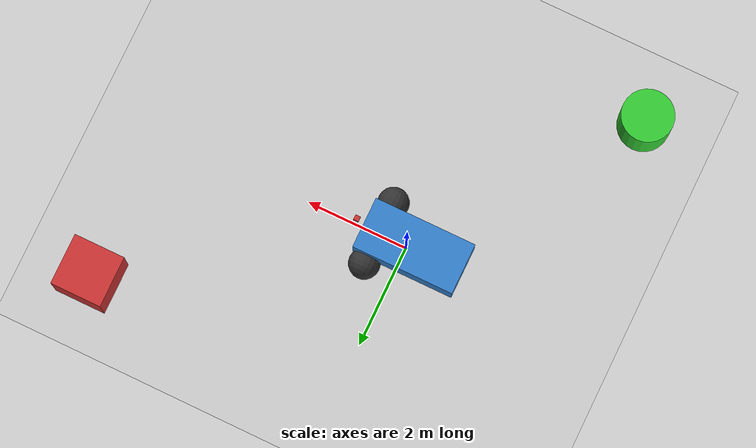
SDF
<?xml version="1.0" ?>
<sdf version="1.8">
  <world name="smart_vehicle_world">

    <!-- 물리 엔진 설정 -->
    <physics name="1ms" type="ignored">
      <max_step_size>0.001</max_step_size>
      <real_time_factor>1.0</real_time_factor>
    </physics>

    <!-- 플러그인들 -->
    <plugin filename="gz-sim-physics-system" name="gz::sim::systems::Physics"></plugin>
    <plugin filename="gz-sim-user-commands-system" name="gz::sim::systems::UserCommands"></plugin>
    <plugin filename="gz-sim-scene-broadcaster-system" name="gz::sim::systems::SceneBroadcaster"></plugin>
    <plugin filename="gz-sim-sensors-system" name="gz::sim::systems::Sensors">
      <render_engine>ogre2</render_engine>
    </plugin>

    <!-- 조명 -->
    <light type="directional" name="sun">
      <cast_shadows>true</cast_shadows>
      <pose>0 0 10 0 0 0</pose>
      <diffuse>1 1 1 1</diffuse>
      <specular>0.5 0.5 0.5 1</specular>
      <attenuation>
        <range>1000</range>
        <constant>0.9</constant>
        <linear>0.01</linear>
        <quadratic>0.001</quadratic>
      </attenuation>
      <direction>-0.5 0.1 -0.9</direction>
    </light>

    <!-- 바닥 -->
    <model name="ground_plane">
      <static>true</static>
      <link name="link">
        <collision name="collision">
          <geometry>
            <plane>
              <normal>0 0 1</normal>
              <size>100 100</size>
            </plane>
          </geometry>
        </collision>
        <visual name="visual">
          <geometry>
            <plane>
              <normal>0 0 1</normal>
              <size>100 100</size>
            </plane>
          </geometry>
          <material>
            <ambient>0.8 0.8 0.8 1</ambient>
            <diffuse>0.8 0.8 0.8 1</diffuse>
            <specular>0.8 0.8 0.8 1</specular>
          </material>
        </visual>
      </link>
    </model>

    <!-- 스마트 차량 모델 (기존 예제 기반) -->
    <model name="smart_vehicle">
      <pose>0 0 0.325 0 0 0</pose>

      <!-- 차체 -->
      <link name="chassis">
        <pose>-0.151427 0 0.175 0 0 0</pose>
        <inertial>
          <mass>1.14395</mass>
          <inertia>
            <ixx>0.126164</ixx>
            <ixy>0</ixy>
            <ixz>0</ixz>
            <iyy>0.416519</iyy>
            <iyz>0</iyz>
            <izz>0.481014</izz>
          </inertia>
        </inertial>
        <visual name="visual">
          <geometry>
            <box>
              <size>2.01142 1 0.568726</size>
            </box>
          </geometry>
          <material>
            <ambient>0.2 0.5 0.8 1</ambient>
            <diffuse>0.2 0.5 0.8 1</diffuse>
            <specular>0.0 0.0 1.0 1</specular>
          </material>
        </visual>
        <collision name="collision">
          <geometry>
            <box>
              <size>2.01142 1 0.568726</size>
            </box>
          </geometry>
        </collision>
      </link>

      <!-- 왼쪽 바퀴 (구동바퀴) -->
      <link name="left_wheel">
        <pose>0.554283 0.625029 -0.025 -1.5707 0 0</pose>
        <inertial>
          <mass>2</mass>
          <inertia>
            <ixx>0.145833</ixx>
            <ixy>0</ixy>
            <ixz>0</ixz>
            <iyy>0.145833</iyy>
            <iyz>0</iyz>
            <izz>0.125</izz>
          </inertia>
        </inertial>
        <visual name="visual">
          <geometry>
            <sphere>
              <radius>0.3</radius>
            </sphere>
          </geometry>
          <material>
            <ambient>0.2 0.2 0.2 1</ambient>
            <diffuse>0.2 0.2 0.2 1</diffuse>
            <specular>0.2 0.2 0.2 1</specular>
          </material>
        </visual>
        <collision name="collision">
          <geometry>
            <sphere>
              <radius>0.3</radius>
            </sphere>
          </geometry>
          <surface>
            <friction>
              <ode>
                <mu>1</mu>
                <mu2>1</mu2>
                <slip1>0.035</slip1>
                <slip2>0</slip2>
                <fdir1>0 0 1</fdir1>
              </ode>
              <bullet>
                <friction>1</friction>
                <friction2>1</friction2>
                <rolling_friction>0.1</rolling_friction>
              </bullet>
            </friction>
          </surface>
        </collision>
      </link>

      <!-- 오른쪽 바퀴 (구동바퀴) -->
      <link name="right_wheel">
        <pose>0.554282 -0.625029 -0.025 -1.5707 0 0</pose>
        <inertial>
          <mass>2</mass>
          <inertia>
            <ixx>0.145833</ixx>
            <ixy>0</ixy>
            <ixz>0</ixz>
            <iyy>0.145833</iyy>
            <iyz>0</iyz>
            <izz>0.125</izz>
          </inertia>
        </inertial>
        <visual name="visual">
          <geometry>
            <sphere>
              <radius>0.3</radius>
            </sphere>
          </geometry>
          <material>
            <ambient>0.2 0.2 0.2 1</ambient>
            <diffuse>0.2 0.2 0.2 1</diffuse>
            <specular>0.2 0.2 0.2 1</specular>
          </material>
        </visual>
        <collision name="collision">
          <geometry>
            <sphere>
              <radius>0.3</radius>
            </sphere>
          </geometry>
          <surface>
            <friction>
              <ode>
                <mu>1</mu>
                <mu2>1</mu2>
                <slip1>0.035</slip1>
                <slip2>0</slip2>
                <fdir1>0 0 1</fdir1>
              </ode>
              <bullet>
                <friction>1</friction>
                <friction2>1</friction2>
                <rolling_friction>0.1</rolling_friction>
              </bullet>
            </friction>
          </surface>
        </collision>
      </link>

      <!-- 캐스터 바퀴 (자유롭게 움직이는 지지바퀴) -->
      <link name="caster">
        <pose>-0.957138 0 -0.125 0 0 0</pose>
        <inertial>
          <mass>1</mass>
          <inertia>
            <ixx>0.1</ixx>
            <ixy>0</ixy>
            <ixz>0</ixz>
            <iyy>0.1</iyy>
            <iyz>0</iyz>
            <izz>0.1</izz>
          </inertia>
        </inertial>
        <visual name="visual">
          <geometry>
            <sphere>
              <radius>0.2</radius>
            </sphere>
          </geometry>
          <material>
            <ambient>0.5 0.5 0.5 1</ambient>
            <diffuse>0.5 0.5 0.5 1</diffuse>
            <specular>0.2 0.2 0.2 1</specular>
          </material>
        </visual>
        <collision name="collision">
          <geometry>
            <sphere>
              <radius>0.2</radius>
            </sphere>
          </geometry>
        </collision>
      </link>

      <!-- 조인트들 -->
      <joint name="left_wheel_joint" type="revolute">
        <parent>chassis</parent>
        <child>left_wheel</child>
        <axis>
          <xyz>0 0 1</xyz>
          <limit>
            <lower>-1.79769e+308</lower>
            <upper>1.79769e+308</upper>
          </limit>
        </axis>
      </joint>

      <joint name="right_wheel_joint" type="revolute">
        <parent>chassis</parent>
        <child>right_wheel</child>
        <axis>
          <xyz>0 0 1</xyz>
          <limit>
            <lower>-1.79769e+308</lower>
            <upper>1.79769e+308</upper>
          </limit>
        </axis>
      </joint>

      <joint name="caster_wheel" type="ball">
        <parent>chassis</parent>
        <child>caster</child>
      </joint>

      <!-- 차동 구동 플러그인 -->
      <plugin filename="gz-sim-diff-drive-system" name="gz::sim::systems::DiffDrive">
        <left_joint>left_wheel_joint</left_joint>
        <right_joint>right_wheel_joint</right_joint>
        <wheel_separation>1.25</wheel_separation>
        <wheel_radius>0.3</wheel_radius>
        <odom_publish_frequency>1</odom_publish_frequency>
        <topic>/smart_vehicle/cmd_vel</topic>
        <odom_topic>/smart_vehicle/odometry</odom_topic>
        <frame_id>odom</frame_id>
        <child_frame_id>base_link</child_frame_id>
        <max_linear_acceleration>1</max_linear_acceleration>
        <min_linear_acceleration>-1</min_linear_acceleration>
        <max_angular_acceleration>2</max_angular_acceleration>
        <min_angular_acceleration>-2</min_angular_acceleration>
        <max_linear_velocity>0.5</max_linear_velocity>
        <min_linear_velocity>-0.5</min_linear_velocity>
        <max_angular_velocity>1</max_angular_velocity>
        <min_angular_velocity>-1</min_angular_velocity>
      </plugin>

      <!-- 카메라 센서 -->
      <link name="camera_link">
        <pose>1.0 0 0.5 0 0 0</pose>
        <inertial>
          <mass>0.1</mass>
          <inertia>
            <ixx>0.000166667</ixx>
            <iyy>0.000166667</iyy>
            <izz>0.000166667</izz>
          </inertia>
        </inertial>
        <visual name="visual">
          <geometry>
            <box>
              <size>0.1 0.1 0.1</size>
            </box>
          </geometry>
          <material>
            <ambient>0.8 0.2 0.2 1</ambient>
            <diffuse>0.8 0.2 0.2 1</diffuse>
          </material>
        </visual>
        <collision name="collision">
          <geometry>
            <box>
              <size>0.1 0.1 0.1</size>
            </box>
          </geometry>
        </collision>
        <sensor name="camera" type="camera">
          <camera>
            <horizontal_fov>1.047</horizontal_fov>
            <image>
              <width>640</width>
              <height>480</height>
            </image>
            <clip>
              <near>0.1</near>
              <far>100</far>
            </clip>
          </camera>
          <always_on>1</always_on>
          <update_rate>30</update_rate>
          <visualize>true</visualize>
          <topic>/camera</topic>
        </sensor>
      </link>

      <joint name="camera_joint" type="fixed">
        <child>camera_link</child>
        <parent>chassis</parent>
      </joint>

    </model>

    <!-- 장애물들 -->
    <model name="obstacle1">
      <pose>5 3 0.5 0 0 0</pose>
      <static>true</static>
      <link name="link">
        <visual name="visual">
          <geometry>
            <box>
              <size>1 1 1</size>
            </box>
          </geometry>
          <material>
            <ambient>0.8 0.2 0.2 1</ambient>
            <diffuse>0.8 0.2 0.2 1</diffuse>
          </material>
        </visual>
        <collision name="collision">
          <geometry>
            <box>
              <size>1 1 1</size>
            </box>
          </geometry>
        </collision>
      </link>
    </model>

    <model name="obstacle2">
      <pose>-3 -4 0.5 0 0 0</pose>
      <static>true</static>
      <link name="link">
        <visual name="visual">
          <geometry>
            <cylinder>
              <radius>0.5</radius>
              <length>1</length>
            </cylinder>
          </geometry>
          <material>
            <ambient>0.2 0.8 0.2 1</ambient>
            <diffuse>0.2 0.8 0.2 1</diffuse>
          </material>
        </visual>
        <collision name="collision">
          <geometry>
            <cylinder>
              <radius>0.5</radius>
              <length>1</length>
            </cylinder>
          </geometry>
        </collision>
      </link>
    </model>

  </world>
</sdf>
